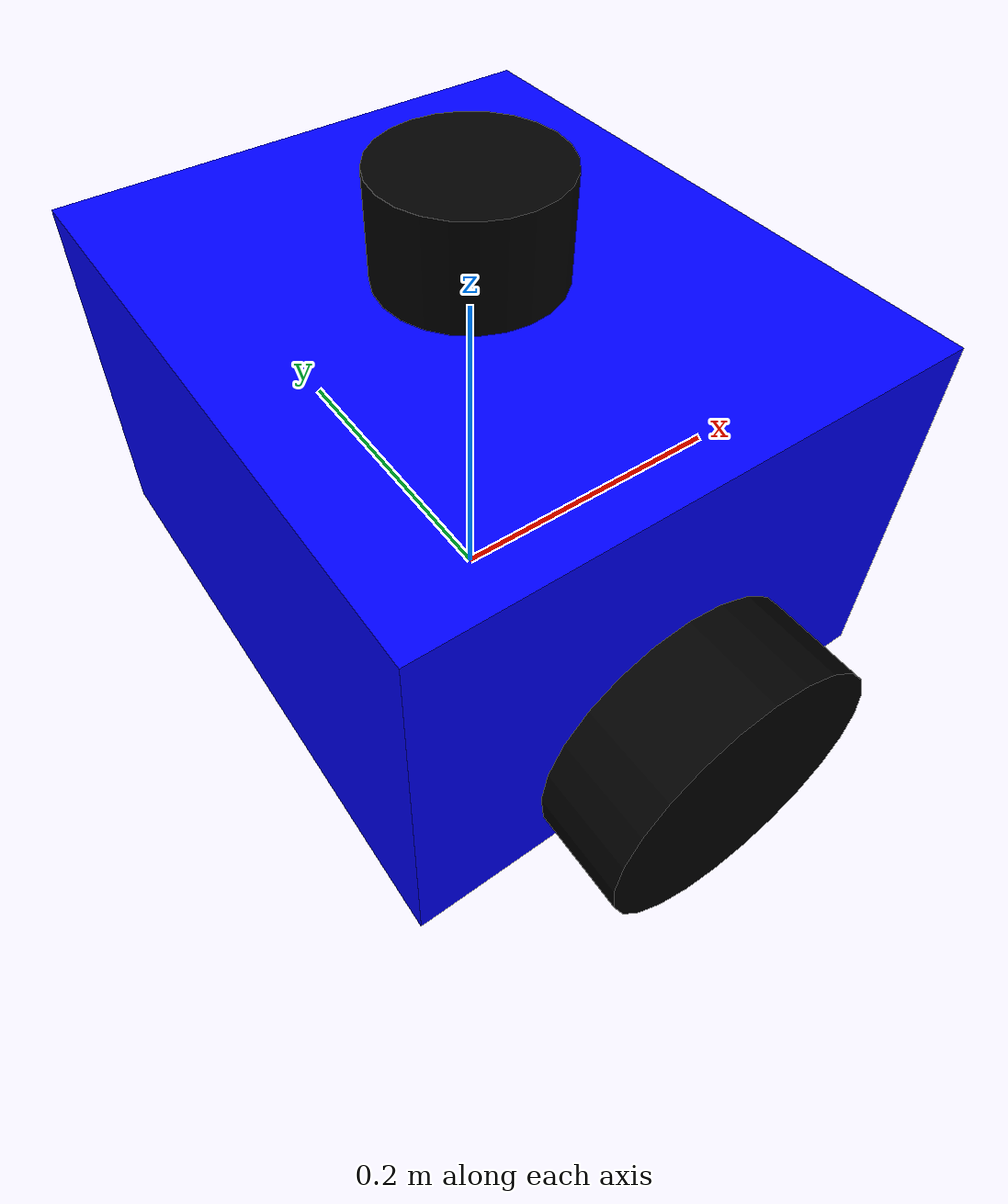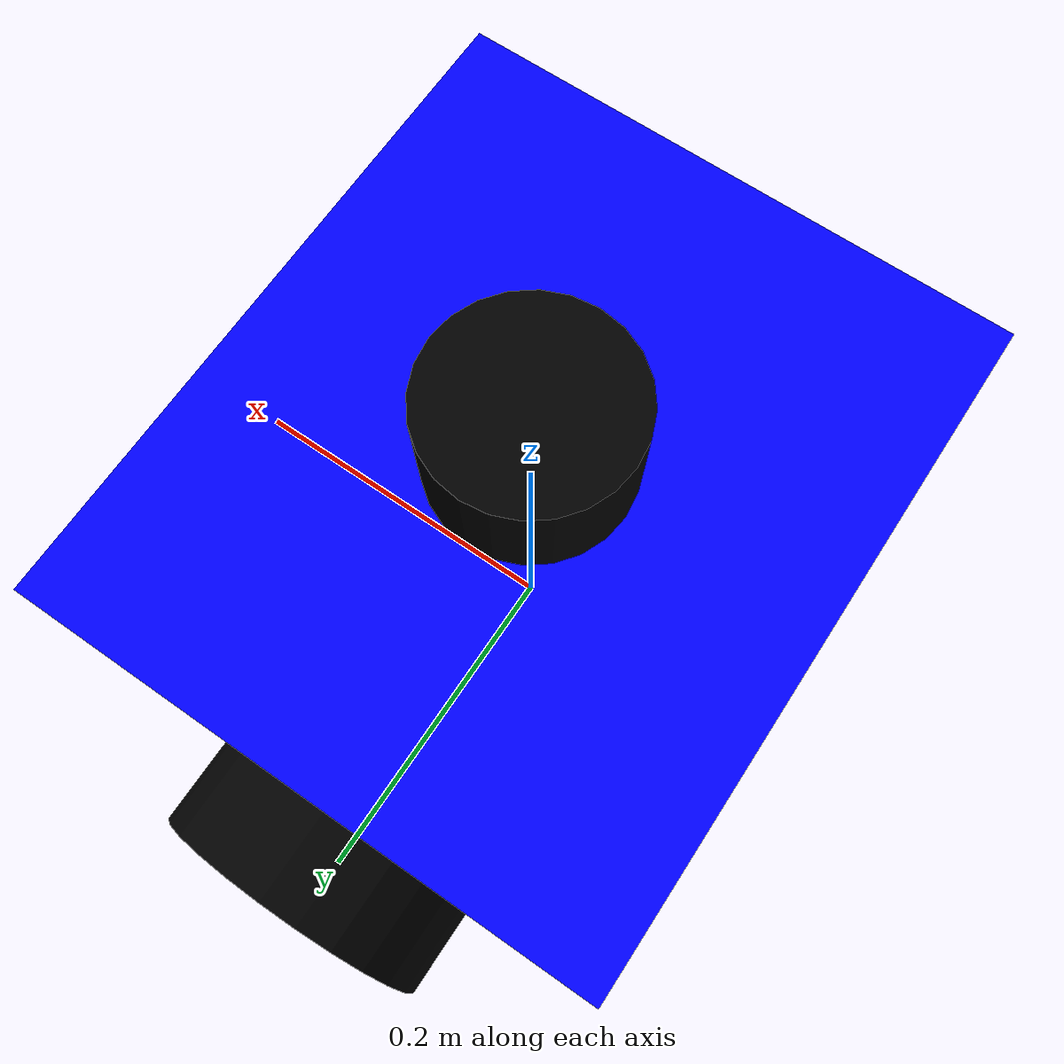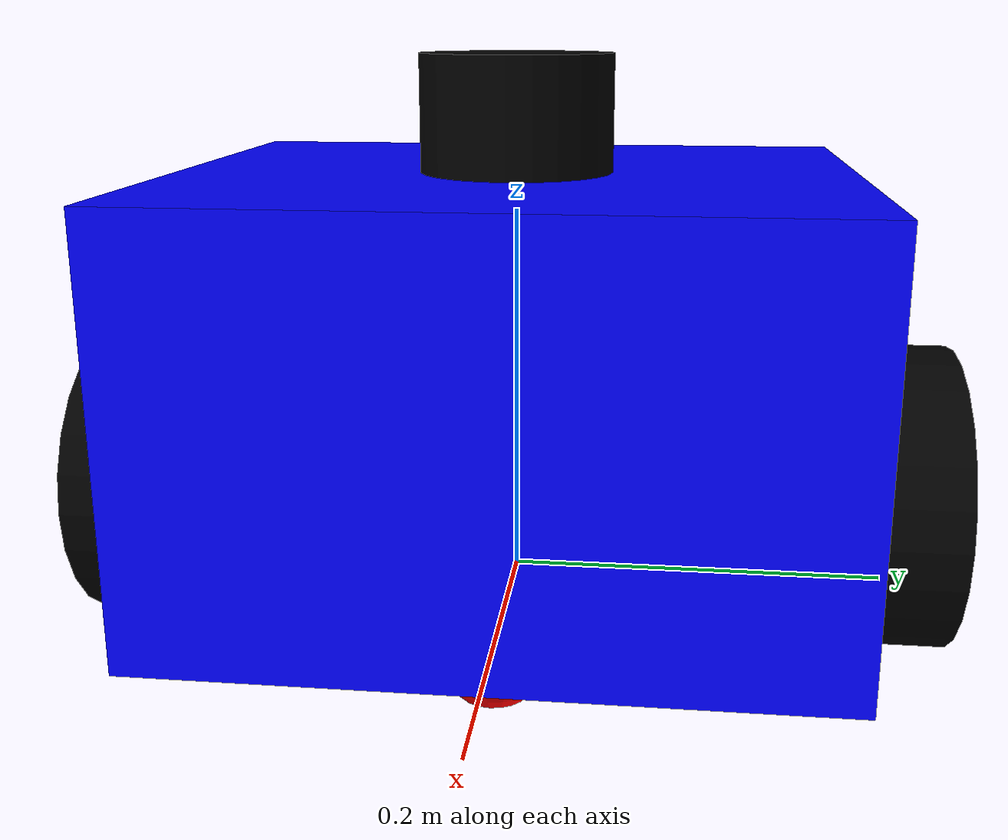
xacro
<?xml version = "1.0"?>
<robot name="sahabat_robot" xmlns:xacro="http://www.ros.org/wiki/xacro">

<!--BASE LINK-->

<link name = "base_link">

</link>

<!--BASEFOOTPRINT LINK-->

<joint name="basefootprint_joint" type="fixed">
    <parent link="base_link"/>
    <child link="base_footprint"/>
    <origin xyz="0 0 0" rpy = "0 0 0"/>
</joint>

<link name="base_footprint">

</link>

<!--BODY LINK-->

<joint name = "body_joint" type = "fixed" >
    <parent link = "base_link"/>
    <child link = "body_link"/>
    <origin xyz = "-0.15 0 0" />
</joint>

<link name = "body_link">
    <visual>
        <origin xyz = "0.15 0 0.11" />
        <geometry>
            <box size = "0.3 0.35 0.22"/>
        </geometry>

        <material name = "blue">
            <color rgba = "0 0 1 1"/>
        </material>
    </visual>

    <collision>
        <origin xyz = "0.15 0 0.11" />
       <geometry>
            <box size = "0.3 0.35 0.22"/>
        </geometry>
    </collision>

    <inertial>
        <mass value = "5.0"/>
        <inertia ixx="0.1" ixy="0.0" ixz="0.0" iyy="0.1" iyz="0.0" izz="0.1"/>
    </inertial>
</link>

<!--LEFT WHEEL-->

<joint name = "left_wheel_joint" type = "continuous">

    <parent link= "base_link"/>
    <child link= "left_wheel_link"/>
    <origin xyz = "0 0.2 0.05" rpy = "-1.571 3.142 0"/>
    <axis xyz = "0 0 1"/>

</joint>

<link name = "left_wheel_link">
    <visual>
        <geometry>
            <cylinder length = "0.057" radius = "0.08"/>
        </geometry>

        <material name = "black">
            <color rgba = "0 0 0 1"/>
        </material>
    </visual>

    <collision>
        <geometry>
            <cylinder length = "0.057" radius = "0.08"/>
        </geometry>
    </collision>

    <inertial>
        <mass value = "3.0"/>
        <inertia ixx="0.01" ixy="0.0" ixz="0.0" iyy="0.01" iyz="0.0" izz="0.01"/>
    </inertial>
</link>

<!--RIGHT WHEEL-->

<joint name = "right_wheel_joint" type = "continuous">

    <parent link = "base_link"/>
    <child link = "right_wheel_link"/>
    <origin xyz = "0 -0.2 0.05" rpy = "1.571 0 0 "/>
    <axis xyz = "0 0 -1"/>

</joint>

<link name = "right_wheel_link">

    <visual>
        <geometry>
            <cylinder length = "0.057" radius = "0.08"/>
        </geometry>

        <material name = "black">
            <color rgba = "0 0 0 1"/>
        </material>
    </visual>

    <collision>
        <geometry>
            <cylinder length = "0.057" radius = "0.08"/>
        </geometry>
    </collision>

    <inertial>
        <mass value = "3.0"/>
        <inertia ixx="0.01" ixy="0.0" ixz="0.0" iyy="0.01" iyz="0.0" izz="0.01"/>
    </inertial>
</link>

<!-- FRONT CASTER WHEELL-->

<link name = "front_caster_wheel_link" >
    <visual>
        <geometry>
            <sphere radius= "0.03"/>
        </geometry>

        <material name = "red" >
            <color rgba = "1 0 0 1"/>
        </material>
    </visual>

    <collision>
        <geometry>
            <sphere radius= "0.03"/>
        </geometry>
    </collision>

</link>

<joint name = "front_caster_wheel_joint" type="fixed">
    <parent link = "body_link"/>
    <child link = "front_caster_wheel_link"/>
    <origin xyz = "0.25 0 0" />
</joint>

<!-- REAR CASTER WHEEL-->
<link name = "rear_caster_wheel_link" >
    <visual>
        <geometry>
            <sphere radius= "0.03"/>
        </geometry>

        <material name = "purple" >
            <color rgba = "1 0 1 1"/>
        </material>
    </visual>

    <collision>
        <geometry>
            <sphere radius= "0.03"/>
        </geometry>
    </collision>
</link>

<joint name = "rear_caster_wheel_joint" type="fixed">
    <parent link = "body_link"/>
    <child link = "rear_caster_wheel_link"/>
    <origin xyz = "0.05 0 0" />
</joint>

    <!-- LiDAR componenets-->

<joint name="lidar_joint" type="fixed">
    <parent link="body_link"/>
    <child link="lidar_link"/>
    <origin xyz="0.15 0 0.25" rpy="0 0 0"/>
</joint>

<link name="lidar_link">
    <visual>
        <geometry>
            <cylinder radius="0.05" length="0.06"/>
        </geometry>
        <material name="Black">
            <color rgba="0 0 0 1"/>
        </material>
    </visual>
    <collision>
        <geometry>
            <cylinder radius="0.05" length="0.06"/>
        </geometry>
    </collision>
    <inertial>
        <mass value="0.1"/>
        <origin xyz="0 0 0" rpy="0 0 0"/>
        <inertia ixx="0.01" ixy="0" ixz="0" iyy="0.01" iyz="0" izz="0.01"/>
    </inertial>
</link>

</robot>
